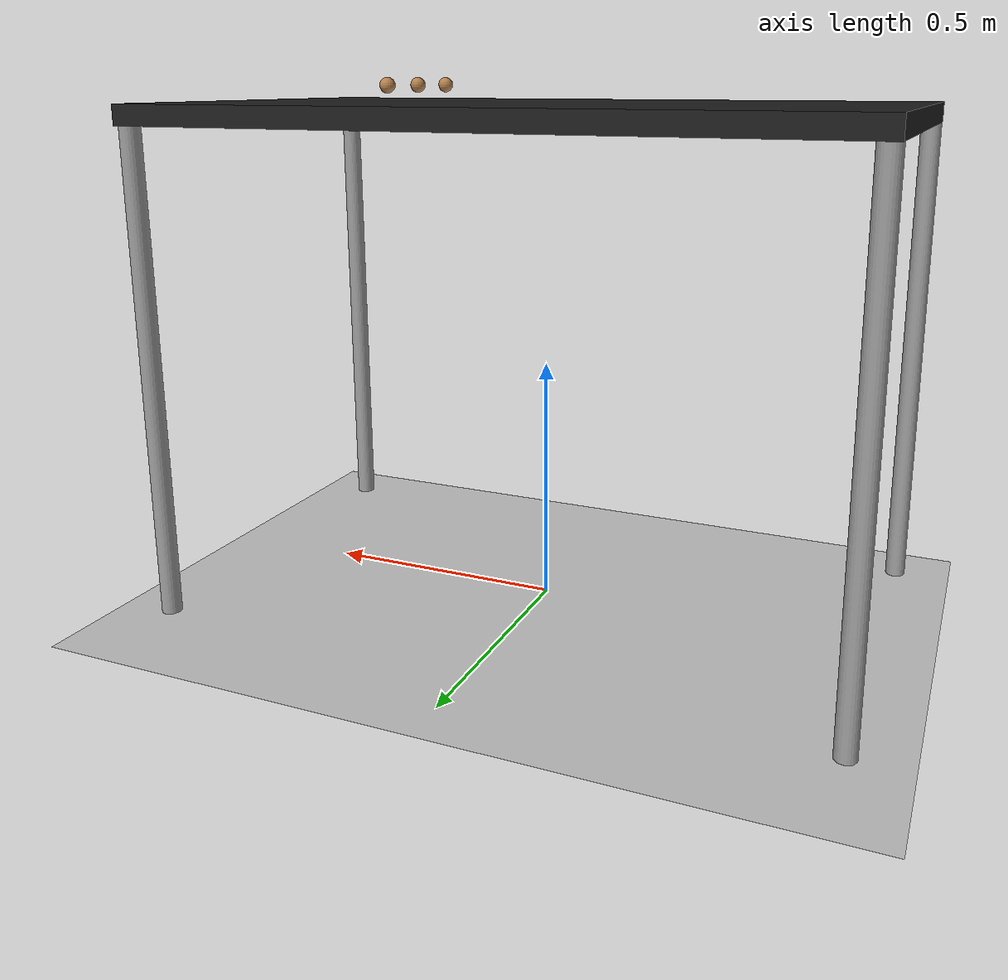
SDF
<sdf version='1.6'>
  <world name='default'>
    <light name='sun' type='directional'>
      <cast_shadows>1</cast_shadows>
      <pose frame=''>0 0 10 0 -0 0</pose>
      <diffuse>0.8 0.8 0.8 1</diffuse>
      <specular>0.1 0.1 0.1 1</specular>
      <attenuation>
        <range>1000</range>
        <constant>0.9</constant>
        <linear>0.01</linear>
        <quadratic>0.001</quadratic>
      </attenuation>
      <direction>-0.5 0.5 -1</direction>
    </light>
    <model name='ground_plane'>
      <static>1</static>
      <link name='link'>
        <collision name='collision'>
          <geometry>
            <plane>
              <normal>0 0 1</normal>
              <size>100 100</size>
            </plane>
          </geometry>
          <surface>
            <friction>
              <ode>
                <mu>100</mu>
                <mu2>50</mu2>
              </ode>
              <torsional>
                <ode/>
              </torsional>
            </friction>
            <contact>
              <ode/>
            </contact>
            <bounce/>
          </surface>
          <max_contacts>10</max_contacts>
        </collision>
        <visual name='visual'>
          <cast_shadows>0</cast_shadows>
          <geometry>
            <plane>
              <normal>0 0 1</normal>
              <size>100 100</size>
            </plane>
          </geometry>
          <material>
            <script>
              <uri>file://media/materials/scripts/gazebo.material</uri>
              <name>Gazebo/Grey</name>
            </script>
          </material>
        </visual>
        <self_collide>0</self_collide>
        <kinematic>0</kinematic>
        <gravity>1</gravity>
      </link>
    </model>
    <gravity>0 0 -9.8</gravity>
    <magnetic_field>6e-06 2.3e-05 -4.2e-05</magnetic_field>
    <atmosphere type='adiabatic'/>
    <physics name='default_physics' default='0' type='ode'>
      <max_step_size>0.0005</max_step_size>
      <real_time_factor>1</real_time_factor>
      <real_time_update_rate>1000</real_time_update_rate>
      <ode>
        <solver>
          <iters>100</iters>
        </solver>
      </ode>
    </physics>
    <scene>
      <ambient>0.4 0.4 0.4 1</ambient>
      <background>0.7 0.7 0.7 1</background>
      <shadows>1</shadows>
    </scene>
    <spherical_coordinates>
      <surface_model>EARTH_WGS84</surface_model>
      <latitude_deg>0</latitude_deg>
      <longitude_deg>0</longitude_deg>
      <elevation>0</elevation>
      <heading_deg>0</heading_deg>
    </spherical_coordinates>
    <model name='table'>
      <static>1</static>
      <link name='link'>
        <collision name='surface'>
          <pose frame=''>0 0 1 0 -0 0</pose>
          <geometry>
            <box>
              <size>1.5 0.8 0.03</size>
            </box>
          </geometry>
          <surface>
            <friction>
              <ode>
                <mu>100</mu>
                <mu2>100</mu2>
              </ode>
              <torsional>
                <ode/>
              </torsional>
            </friction>
            <contact>
              <ode/>
            </contact>
            <bounce/>
          </surface>
          <max_contacts>10</max_contacts>
        </collision>
        <visual name='visual1'>
          <pose frame=''>0 0 1 0 -0 0</pose>
          <geometry>
            <box>
              <size>1.4 0.8 0.04</size>
            </box>
          </geometry>
          <material>
            <script>
              <uri>file://media/materials/scripts/gazebo.material</uri>
              <name>Gazebo/Black</name>
            </script>
          </material>
        </visual>
        <collision name='front_left_leg'>
          <pose frame=''>0.68 0.38 0.5 0 -0 0</pose>
          <geometry>
            <cylinder>
              <radius>0.02</radius>
              <length>1</length>
            </cylinder>
          </geometry>
          <max_contacts>10</max_contacts>
          <surface>
            <contact>
              <ode/>
            </contact>
            <bounce/>
            <friction>
              <torsional>
                <ode/>
              </torsional>
              <ode/>
            </friction>
          </surface>
        </collision>
        <visual name='front_left_leg'>
          <pose frame=''>0.68 0.38 0.5 0 -0 0</pose>
          <geometry>
            <cylinder>
              <radius>0.02</radius>
              <length>1</length>
            </cylinder>
          </geometry>
          <material>
            <script>
              <uri>file://media/materials/scripts/gazebo.material</uri>
              <name>Gazebo/Grey</name>
            </script>
          </material>
        </visual>
        <collision name='front_right_leg'>
          <pose frame=''>0.68 -0.38 0.5 0 -0 0</pose>
          <geometry>
            <cylinder>
              <radius>0.02</radius>
              <length>1</length>
            </cylinder>
          </geometry>
          <max_contacts>10</max_contacts>
          <surface>
            <contact>
              <ode/>
            </contact>
            <bounce/>
            <friction>
              <torsional>
                <ode/>
              </torsional>
              <ode/>
            </friction>
          </surface>
        </collision>
        <visual name='front_right_leg'>
          <pose frame=''>0.68 -0.38 0.5 0 -0 0</pose>
          <geometry>
            <cylinder>
              <radius>0.02</radius>
              <length>1</length>
            </cylinder>
          </geometry>
          <material>
            <script>
              <uri>file://media/materials/scripts/gazebo.material</uri>
              <name>Gazebo/Grey</name>
            </script>
          </material>
        </visual>
        <collision name='back_right_leg'>
          <pose frame=''>-0.68 -0.38 0.5 0 -0 0</pose>
          <geometry>
            <cylinder>
              <radius>0.02</radius>
              <length>1</length>
            </cylinder>
          </geometry>
          <max_contacts>10</max_contacts>
          <surface>
            <contact>
              <ode/>
            </contact>
            <bounce/>
            <friction>
              <torsional>
                <ode/>
              </torsional>
              <ode/>
            </friction>
          </surface>
        </collision>
        <visual name='back_right_leg'>
          <pose frame=''>-0.68 -0.38 0.5 0 -0 0</pose>
          <geometry>
            <cylinder>
              <radius>0.02</radius>
              <length>1</length>
            </cylinder>
          </geometry>
          <material>
            <script>
              <uri>file://media/materials/scripts/gazebo.material</uri>
              <name>Gazebo/Grey</name>
            </script>
          </material>
        </visual>
        <collision name='back_left_leg'>
          <pose frame=''>-0.68 0.38 0.5 0 -0 0</pose>
          <geometry>
            <cylinder>
              <radius>0.02</radius>
              <length>1</length>
            </cylinder>
          </geometry>
          <max_contacts>10</max_contacts>
          <surface>
            <contact>
              <ode/>
            </contact>
            <bounce/>
            <friction>
              <torsional>
                <ode/>
              </torsional>
              <ode/>
            </friction>
          </surface>
        </collision>
        <visual name='back_left_leg'>
          <pose frame=''>-0.68 0.38 0.5 0 -0 0</pose>
          <geometry>
            <cylinder>
              <radius>0.02</radius>
              <length>1</length>
            </cylinder>
          </geometry>
          <material>
            <script>
              <uri>file://media/materials/scripts/gazebo.material</uri>
              <name>Gazebo/Grey</name>
            </script>
          </material>
        </visual>
        <self_collide>0</self_collide>
        <inertial>
          <inertia>
            <ixx>1</ixx>
            <ixy>0</ixy>
            <ixz>0</ixz>
            <iyy>1</iyy>
            <iyz>0</iyz>
            <izz>1</izz>
          </inertia>
          <mass>1</mass>
        </inertial>
        <kinematic>0</kinematic>
        <gravity>1</gravity>
      </link>
      <pose frame=''>0 0 0 0 -0 0</pose>
    </model>

    <model name='tiny_cricket_ball_1'>
      <link name='link'>
        <pose frame=''>0 0 0.0375 0 -0 0</pose>
        <inertial>
          <mass>0.0467</mass>
          <inertia>
            <ixx>8.25187e-05</ixx>
            <ixy>0</ixy>
            <ixz>0</ixz>
            <iyy>8.25187e-05</iyy>
            <iyz>0</iyz>
            <izz>8.25187e-05</izz>
          </inertia>
        </inertial>
        <collision name='collision'>
          <geometry>
            <sphere>
              <radius>0.015</radius>
            </sphere>
          </geometry>
          <surface>
            <contact>
              <poissons_ratio>0.347</poissons_ratio>
              <elastic_modulus>8.8e+09</elastic_modulus>
              <ode>
                <kp>100000</kp>
                <kd>100</kd>
                <max_vel>100</max_vel>
                <min_depth>0.001</min_depth>
              </ode>
            </contact>
            <friction>
              <torsional>
                <coefficient>1</coefficient>
                <use_patch_radius>0</use_patch_radius>
                <surface_radius>0.01</surface_radius>
                <ode/>
              </torsional>
              <ode>
                <mu>1.0</mu>
                <mu2>1.0</mu2>
              </ode>
            </friction>
            <bounce/>
          </surface>
          <max_contacts>100</max_contacts>
        </collision>
        <visual name='visual'>
          <geometry>
            <sphere>
              <radius>0.015</radius>
            </sphere>
          </geometry>
          <material>
            <script>
              <uri>file://media/materials/scripts/gazebo.material</uri>
              <name>Gazebo/WoodFloor</name>
            </script>
          </material>
        </visual>
        <velocity_decay>
          <linear>0</linear>
          <angular>0.005</angular>
        </velocity_decay>
        <self_collide>0</self_collide>
        <kinematic>0</kinematic>
        <gravity>1</gravity>
      </link>
      <pose frame=''>0.28 0.12 1.015 0 -0 0</pose>
    </model>

    <model name='tiny_cricket_ball_2'>
      <link name='link'>
        <pose frame=''>0 0 0.0375 0 -0 0</pose>
        <inertial>
          <mass>0.0467</mass>
          <inertia>
            <ixx>8.25187e-05</ixx>
            <ixy>0</ixy>
            <ixz>0</ixz>
            <iyy>8.25187e-05</iyy>
            <iyz>0</iyz>
            <izz>8.25187e-05</izz>
          </inertia>
        </inertial>
        <collision name='collision'>
          <geometry>
            <sphere>
              <radius>0.015</radius>
            </sphere>
          </geometry>
          <surface>
            <contact>
              <poissons_ratio>0.347</poissons_ratio>
              <elastic_modulus>8.8e+09</elastic_modulus>
              <ode>
                <kp>100000</kp>
                <kd>100</kd>
                <max_vel>100</max_vel>
                <min_depth>0.001</min_depth>
              </ode>
            </contact>
            <friction>
              <torsional>
                <coefficient>1</coefficient>
                <use_patch_radius>0</use_patch_radius>
                <surface_radius>0.01</surface_radius>
                <ode/>
              </torsional>
              <ode>
                <mu>1.0</mu>
                <mu2>1.0</mu2>
              </ode>
            </friction>
            <bounce/>
          </surface>
          <max_contacts>100</max_contacts>
        </collision>
        <visual name='visual'>
          <geometry>
            <sphere>
              <radius>0.015</radius>
            </sphere>
          </geometry>
          <material>
            <script>
              <uri>file://media/materials/scripts/gazebo.material</uri>
              <name>Gazebo/WoodPallet</name>
            </script>
          </material>
        </visual>
        <velocity_decay>
          <linear>0</linear>
          <angular>0.005</angular>
        </velocity_decay>
        <self_collide>0</self_collide>
        <kinematic>0</kinematic>
        <gravity>1</gravity>
      </link>
      <pose frame=''>0.28 0 1.015 0 -0 0</pose>
    </model>

   <model name='tiny_cricket_ball_3'>
      <link name='link'>
        <pose frame=''>0 0 0.0375 0 -0 0</pose>
        <inertial>
          <mass>0.0467</mass>
          <inertia>
            <ixx>8.25187e-05</ixx>
            <ixy>0</ixy>
            <ixz>0</ixz>
            <iyy>8.25187e-05</iyy>
            <iyz>0</iyz>
            <izz>8.25187e-05</izz>
          </inertia>
        </inertial>
        <collision name='collision'>
          <geometry>
            <sphere>
              <radius>0.015</radius>
            </sphere>
          </geometry>
          <surface>
            <contact>
              <poissons_ratio>0.347</poissons_ratio>
              <elastic_modulus>8.8e+09</elastic_modulus>
              <ode>
                <kp>100000</kp>
                <kd>100</kd>
                <max_vel>100</max_vel>
                <min_depth>0.001</min_depth>
              </ode>
            </contact>
            <friction>
              <torsional>
                <coefficient>1</coefficient>
                <use_patch_radius>0</use_patch_radius>
                <surface_radius>0.01</surface_radius>
                <ode/>
              </torsional>
              <ode>
                <mu>1.0</mu>
                <mu2>1.0</mu2>
              </ode>
            </friction>
            <bounce/>
          </surface>
          <max_contacts>100</max_contacts>
        </collision>
        <visual name='visual'>
          <geometry>
            <sphere>
              <radius>0.015</radius>
            </sphere>
          </geometry>
          <material>
            <script>
              <uri>file://media/materials/scripts/gazebo.material</uri>
              <name>Gazebo/Wood</name>
            </script>
          </material>
        </visual>
        <velocity_decay>
          <linear>0</linear>
          <angular>0.005</angular>
        </velocity_decay>
        <self_collide>0</self_collide>
        <kinematic>0</kinematic>
        <gravity>1</gravity>
      </link>
      <pose frame=''>0.28 -0.12 1.015 0 -0 0</pose>
    </model>

    <gui fullscreen='0'>
      <camera name='user_camera'>
        <pose frame=''>2.73099 -1.19131 2.41562 0 0.595084 2.49911</pose>
        <view_controller>orbit</view_controller>
        <projection_type>perspective</projection_type>
      </camera>
    </gui>
  </world>
</sdf>
